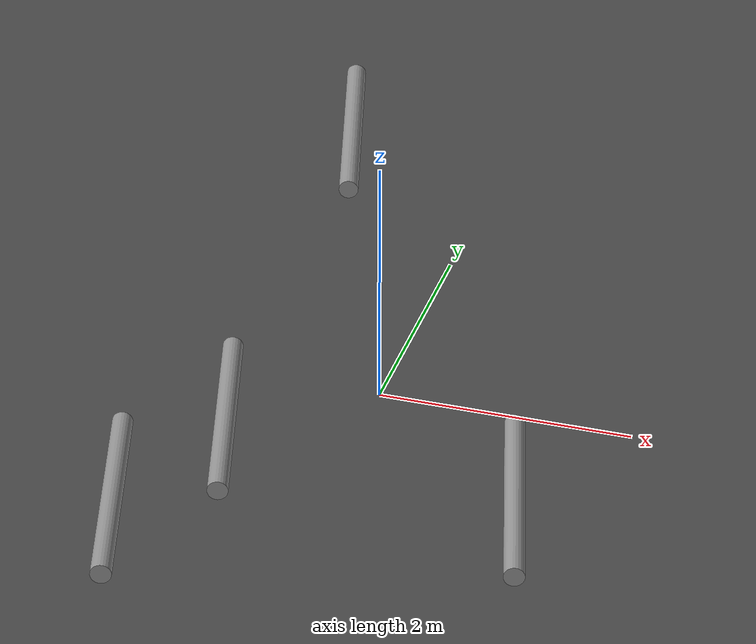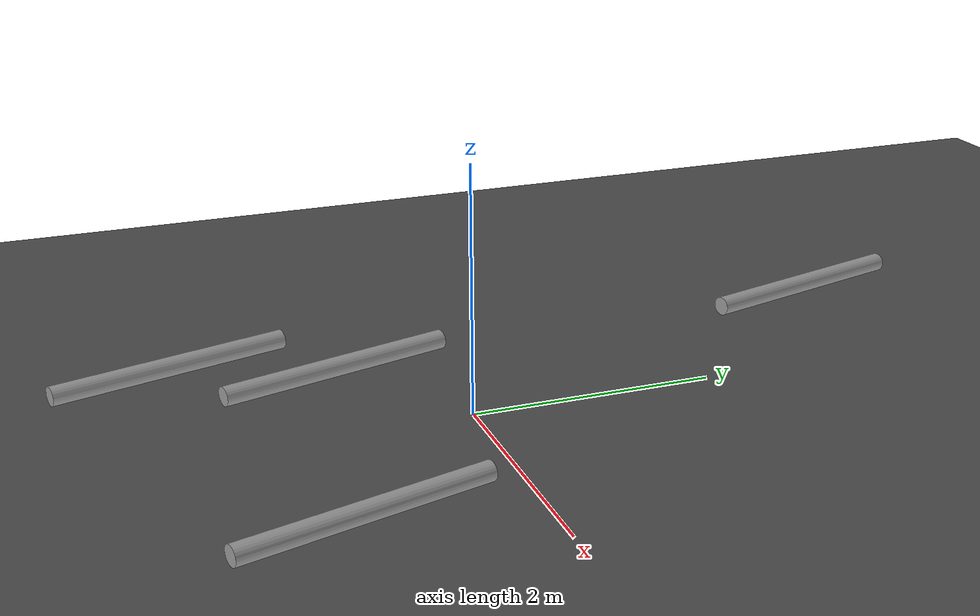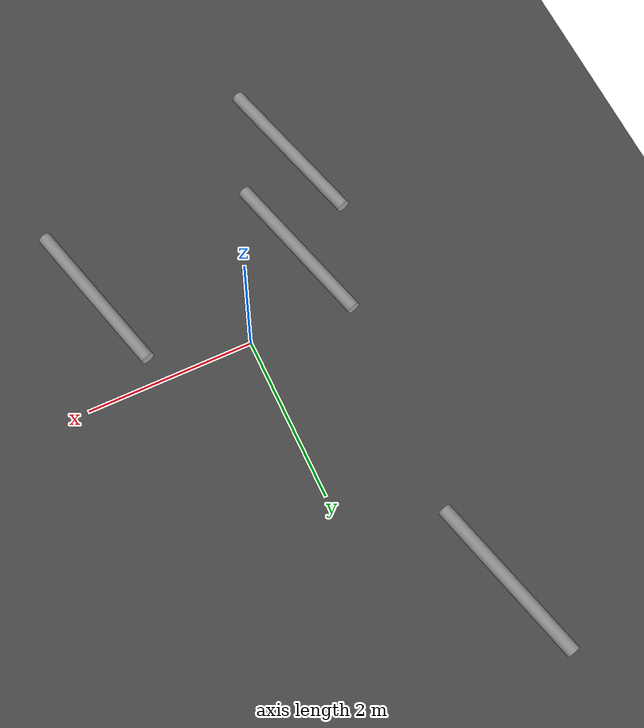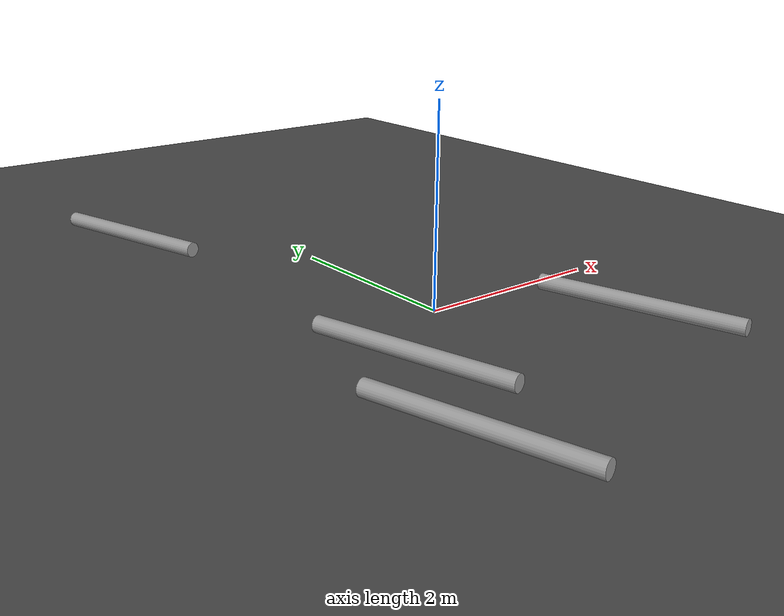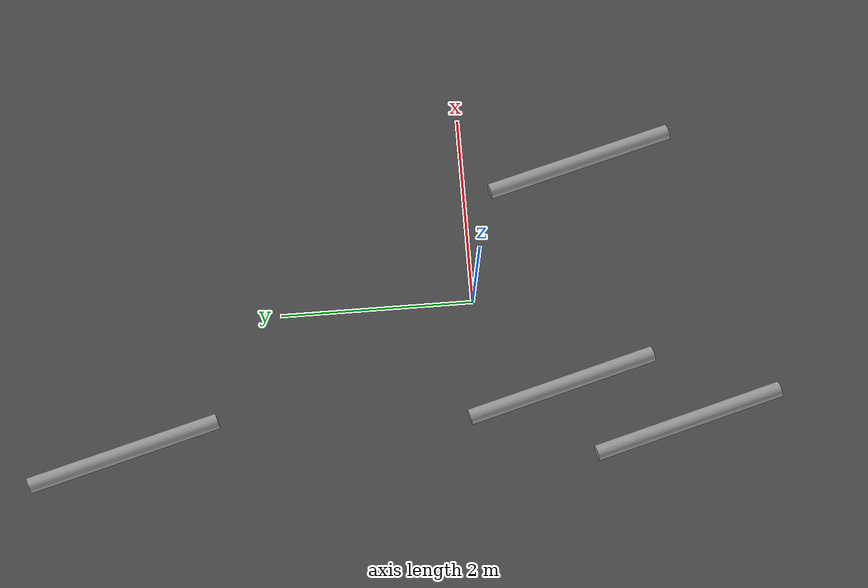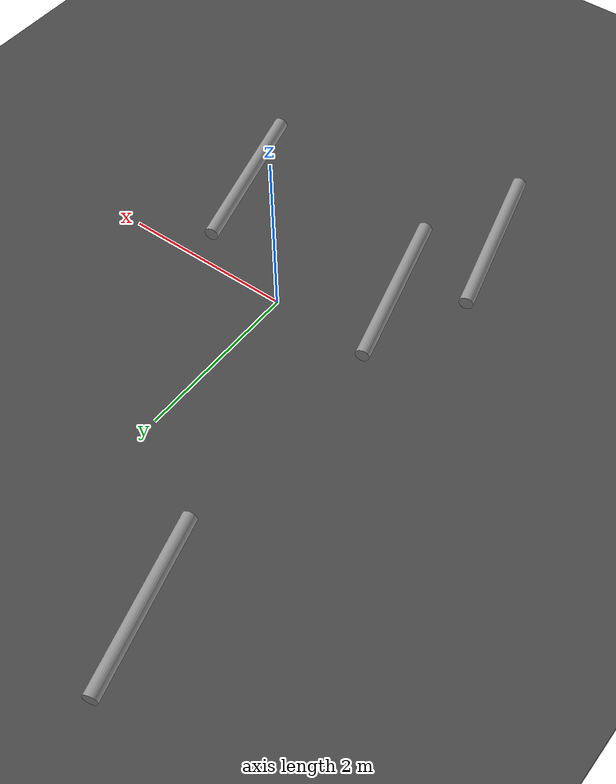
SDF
<sdf version="1.6">
 <world name="default">
  <light name="sun" type="directional">
   <pose>0 0 10 0 -0 0</pose>
   <diffuse>0.8 0.8 0.8 1</diffuse>
   <specular>0.2 0.2 0.2 1</specular>
   <attenuation>
    <range>1000</range>
    <constant>0.9</constant>
    <linear>0.01</linear>
    <quadratic>0.001</quadratic>
   </attenuation>
   <direction>-0.5 0.1 -0.9</direction>
  </light>
  <model name="ground_plane">
   <static>1</static>
   <link name="link">
    <collision name="collision">
     <geometry><plane><normal>0 0 1</normal><size>100 100</size></plane></geometry>
     <surface><friction><ode><mu>100</mu><mu2>50</mu2></ode></friction></surface>
    </collision>
    <visual name="visual">
     <cast_shadows>0</cast_shadows>
     <geometry><plane><normal>0 0 1</normal><size>100 100</size></plane></geometry>
     <material>
      <script><uri>file://media/materials/scripts/gazebo.material</uri><name>Gazebo/Grey</name></script>
     </material>
    </visual>
   </link>
  </model>
  <model name="asphalt_plane">
   <static>1</static>
   <link name="link">
    <collision name="collision"><geometry><box><size>20 20 0.1</size></box></geometry></collision>
    <visual name="visual">
     <cast_shadows>0</cast_shadows>
     <geometry><box><size>20 20 0.1</size></box></geometry>
     <material>
      <script>
       <uri>model://asphalt_plane/materials/scripts</uri>
       <uri>model://asphalt_plane/materials/textures</uri>
       <name>vrc/asphalt</name>
      </script>
     </material>
    </visual>
   </link>
  </model>
  <physics name="default_physics" default="0" type="ode">
   <ode>
    <solver>
     <type>quick</type>
     <iters>10</iters>
     <sor>1.3</sor>
     <use_dynamic_moi_rescaling>0</use_dynamic_moi_rescaling>
    </solver>
    <constraints>
     <cfm>0</cfm>
     <erp>0.2</erp>
     <contact_max_correcting_vel>100</contact_max_correcting_vel>
     <contact_surface_layer>0.001</contact_surface_layer>
    </constraints>
   </ode>
   <max_step_size>0.004</max_step_size>
   <real_time_factor>1</real_time_factor>
   <real_time_update_rate>250</real_time_update_rate>
  </physics>
  <gravity>0 0 -9.8066</gravity>
  <magnetic_field>6e-06 2.3e-05 -4.2e-05</magnetic_field>
  <atmosphere type="adiabatic"/>
  <scene><ambient>0.4 0.4 0.4 1</ambient><background>0.7 0.7 0.7 1</background><shadows>1</shadows></scene>
  <spherical_coordinates>
   <surface_model>EARTH_WGS84</surface_model>
   <latitude_deg>0</latitude_deg>
   <longitude_deg>0</longitude_deg>
   <elevation>0</elevation>
   <heading_deg>0</heading_deg>
  </spherical_coordinates>
  <model name="poste_16x200">
   <link name="link_1">
    <inertial>
     <mass>1</mass>
     <inertia><ixx>0.145833</ixx><ixy>0</ixy><ixz>0</ixz><iyy>0.145833</iyy><iyz>0</iyz><izz>0.125</izz></inertia>
    </inertial>
    <pose>5e-06 3e-06 0 0 -0 0</pose>
    <visual name="visual">
     <geometry><cylinder><radius>0.08</radius><length>2</length></cylinder></geometry>
     <material>
      <lighting>1</lighting>
      <script><uri>file://media/materials/scripts/gazebo.material</uri><name>Gazebo/Grey</name></script>
      <shader type="vertex"><normal_map>__default__</normal_map></shader>
      <ambient>0.3 0.3 0.3 1</ambient>
      <diffuse>0.7 0.7 0.7 1</diffuse>
      <specular>0.01 0.01 0.01 1</specular>
      <emissive>0 0 0 1</emissive>
     </material>
    </visual>
    <collision name="collision">
     <geometry><cylinder><radius>0.08</radius><length>2</length></cylinder></geometry>
     <surface>
      <friction>
       <ode><mu>1</mu><mu2>1</mu2><fdir1>0 0 0</fdir1><slip1>0</slip1><slip2>0</slip2></ode>
       <torsional>
        <coefficient>1</coefficient>
        <patch_radius>0</patch_radius>
        <surface_radius>0</surface_radius>
        <use_patch_radius>1</use_patch_radius>
        <ode><slip>0</slip></ode>
       </torsional>
      </friction>
      <bounce><restitution_coefficient>0</restitution_coefficient><threshold>1e+06</threshold></bounce>
      <contact>
       <collide_without_contact>0</collide_without_contact>
       <collide_without_contact_bitmask>1</collide_without_contact_bitmask>
       <collide_bitmask>1</collide_bitmask>
       <ode>
        <soft_cfm>0</soft_cfm>
        <soft_erp>0.2</soft_erp>
        <kp>1e+13</kp>
        <kd>1</kd>
        <max_vel>0.01</max_vel>
        <min_depth>0</min_depth>
       </ode>
       <bullet>
        <split_impulse>1</split_impulse>
        <split_impulse_penetration_threshold>-0.01</split_impulse_penetration_threshold>
        <soft_cfm>0</soft_cfm>
        <soft_erp>0.2</soft_erp>
        <kp>1e+13</kp>
        <kd>1</kd>
       </bullet>
      </contact>
     </surface>
    </collision>
   </link>
   <static>0</static>
   <pose>1.41492 -1.23582 0.130002 -1.5708 -0.114471 -2.878</pose>
  </model>
  <model name="poste_16x200_0">
   <link name="link_1">
    <inertial>
     <mass>1</mass>
     <inertia><ixx>0.145833</ixx><ixy>0</ixy><ixz>0</ixz><iyy>0.145833</iyy><iyz>0</iyz><izz>0.125</izz></inertia>
    </inertial>
    <pose>5e-06 3e-06 0 0 -0 0</pose>
    <visual name="visual">
     <geometry><cylinder><radius>0.08</radius><length>2</length></cylinder></geometry>
     <material>
      <lighting>1</lighting>
      <script><uri>file://media/materials/scripts/gazebo.material</uri><name>Gazebo/Grey</name></script>
      <shader type="vertex"><normal_map>__default__</normal_map></shader>
      <ambient>0.3 0.3 0.3 1</ambient>
      <diffuse>0.7 0.7 0.7 1</diffuse>
      <specular>0.01 0.01 0.01 1</specular>
      <emissive>0 0 0 1</emissive>
     </material>
    </visual>
    <collision name="collision">
     <geometry><cylinder><radius>0.08</radius><length>2</length></cylinder></geometry>
     <surface>
      <friction>
       <ode><mu>1</mu><mu2>1</mu2><fdir1>0 0 0</fdir1><slip1>0</slip1><slip2>0</slip2></ode>
       <torsional>
        <coefficient>1</coefficient>
        <patch_radius>0</patch_radius>
        <surface_radius>0</surface_radius>
        <use_patch_radius>1</use_patch_radius>
        <ode><slip>0</slip></ode>
       </torsional>
      </friction>
      <bounce><restitution_coefficient>0</restitution_coefficient><threshold>1e+06</threshold></bounce>
      <contact>
       <collide_without_contact>0</collide_without_contact>
       <collide_without_contact_bitmask>1</collide_without_contact_bitmask>
       <collide_bitmask>1</collide_bitmask>
       <ode>
        <soft_cfm>0</soft_cfm>
        <soft_erp>0.2</soft_erp>
        <kp>1e+13</kp>
        <kd>1</kd>
        <max_vel>0.01</max_vel>
        <min_depth>0</min_depth>
       </ode>
       <bullet>
        <split_impulse>1</split_impulse>
        <split_impulse_penetration_threshold>-0.01</split_impulse_penetration_threshold>
        <soft_cfm>0</soft_cfm>
        <soft_erp>0.2</soft_erp>
        <kp>1e+13</kp>
        <kd>1</kd>
       </bullet>
      </contact>
     </surface>
    </collision>
   </link>
   <static>0</static>
   <pose>-1.3445 3.67024 0.129996 -1.5708 -1.39077 -2.878</pose>
  </model>
  <model name="poste_16x200_1">
   <link name="link_1">
    <inertial>
     <mass>1</mass>
     <inertia><ixx>0.145833</ixx><ixy>0</ixy><ixz>0</ixz><iyy>0.145833</iyy><iyz>0</iyz><izz>0.125</izz></inertia>
    </inertial>
    <pose>5e-06 3e-06 0 0 -0 0</pose>
    <visual name="visual">
     <geometry><cylinder><radius>0.08</radius><length>2</length></cylinder></geometry>
     <material>
      <lighting>1</lighting>
      <script><uri>file://media/materials/scripts/gazebo.material</uri><name>Gazebo/Grey</name></script>
      <shader type="vertex"><normal_map>__default__</normal_map></shader>
      <ambient>0.3 0.3 0.3 1</ambient>
      <diffuse>0.7 0.7 0.7 1</diffuse>
      <specular>0.01 0.01 0.01 1</specular>
      <emissive>0 0 0 1</emissive>
     </material>
    </visual>
    <collision name="collision">
     <geometry><cylinder><radius>0.08</radius><length>2</length></cylinder></geometry>
     <surface>
      <friction>
       <ode><mu>1</mu><mu2>1</mu2><fdir1>0 0 0</fdir1><slip1>0</slip1><slip2>0</slip2></ode>
       <torsional>
        <coefficient>1</coefficient>
        <patch_radius>0</patch_radius>
        <surface_radius>0</surface_radius>
        <use_patch_radius>1</use_patch_radius>
        <ode><slip>0</slip></ode>
       </torsional>
      </friction>
      <bounce><restitution_coefficient>0</restitution_coefficient><threshold>1e+06</threshold></bounce>
      <contact>
       <collide_without_contact>0</collide_without_contact>
       <collide_without_contact_bitmask>1</collide_without_contact_bitmask>
       <collide_bitmask>1</collide_bitmask>
       <ode>
        <soft_cfm>0</soft_cfm>
        <soft_erp>0.2</soft_erp>
        <kp>1e+13</kp>
        <kd>1</kd>
        <max_vel>0.01</max_vel>
        <min_depth>0</min_depth>
       </ode>
       <bullet>
        <split_impulse>1</split_impulse>
        <split_impulse_penetration_threshold>-0.01</split_impulse_penetration_threshold>
        <soft_cfm>0</soft_cfm>
        <soft_erp>0.2</soft_erp>
        <kp>1e+13</kp>
        <kd>1</kd>
       </bullet>
      </contact>
     </surface>
    </collision>
   </link>
   <static>0</static>
   <pose>-1.44648 -2.07293 0.129995 -1.5708 -1.54169 -2.878</pose>
  </model>
  <model name="poste_16x200_2">
   <link name="link_1">
    <inertial>
     <mass>1</mass>
     <inertia><ixx>0.145833</ixx><ixy>0</ixy><ixz>0</ixz><iyy>0.145833</iyy><iyz>0</iyz><izz>0.125</izz></inertia>
    </inertial>
    <pose>5e-06 3e-06 0 0 -0 0</pose>
    <visual name="visual">
     <geometry><cylinder><radius>0.08</radius><length>2</length></cylinder></geometry>
     <material>
      <lighting>1</lighting>
      <script><uri>file://media/materials/scripts/gazebo.material</uri><name>Gazebo/Grey</name></script>
      <shader type="vertex"><normal_map>__default__</normal_map></shader>
      <ambient>0.3 0.3 0.3 1</ambient>
      <diffuse>0.7 0.7 0.7 1</diffuse>
      <specular>0.01 0.01 0.01 1</specular>
      <emissive>0 0 0 1</emissive>
     </material>
    </visual>
    <collision name="collision">
     <geometry><cylinder><radius>0.08</radius><length>2</length></cylinder></geometry>
     <surface>
      <friction>
       <ode><mu>1</mu><mu2>1</mu2><fdir1>0 0 0</fdir1><slip1>0</slip1><slip2>0</slip2></ode>
       <torsional>
        <coefficient>1</coefficient>
        <patch_radius>0</patch_radius>
        <surface_radius>0</surface_radius>
        <use_patch_radius>1</use_patch_radius>
        <ode><slip>0</slip></ode>
       </torsional>
      </friction>
      <bounce><restitution_coefficient>0</restitution_coefficient><threshold>1e+06</threshold></bounce>
      <contact>
       <collide_without_contact>0</collide_without_contact>
       <collide_without_contact_bitmask>1</collide_without_contact_bitmask>
       <collide_bitmask>1</collide_bitmask>
       <ode>
        <soft_cfm>0</soft_cfm>
        <soft_erp>0.2</soft_erp>
        <kp>1e+13</kp>
        <kd>1</kd>
        <max_vel>0.01</max_vel>
        <min_depth>0</min_depth>
       </ode>
       <bullet>
        <split_impulse>1</split_impulse>
        <split_impulse_penetration_threshold>-0.01</split_impulse_penetration_threshold>
        <soft_cfm>0</soft_cfm>
        <soft_erp>0.2</soft_erp>
        <kp>1e+13</kp>
        <kd>1</kd>
       </bullet>
      </contact>
     </surface>
    </collision>
   </link>
   <static>0</static>
   <pose>-0.978779 -0.820773 0.129994 1.57086 -0.749039 0.263542</pose>
  </model>
 </world>
</sdf>
